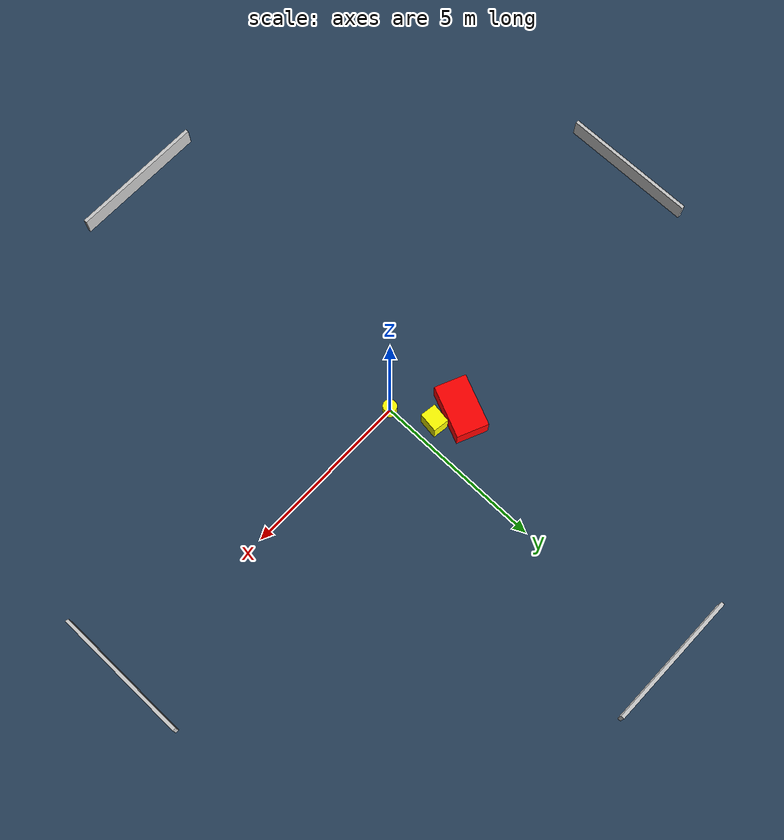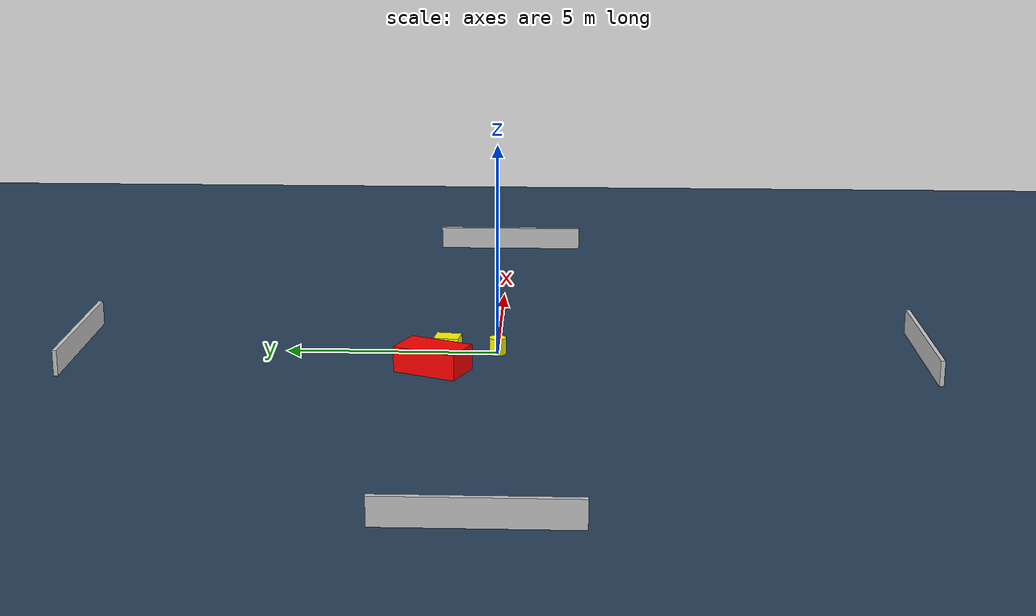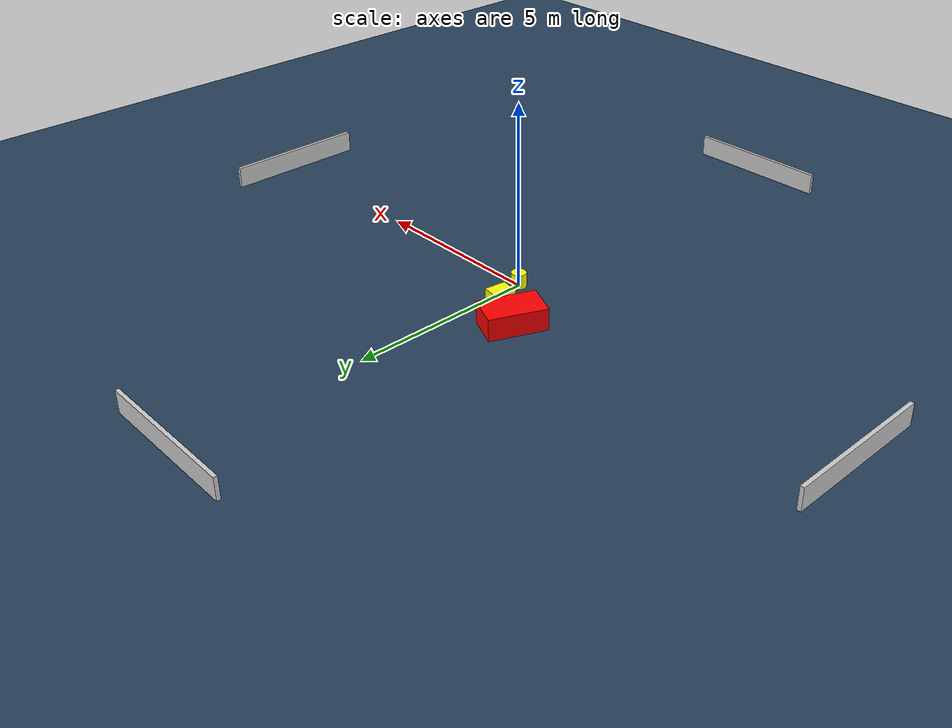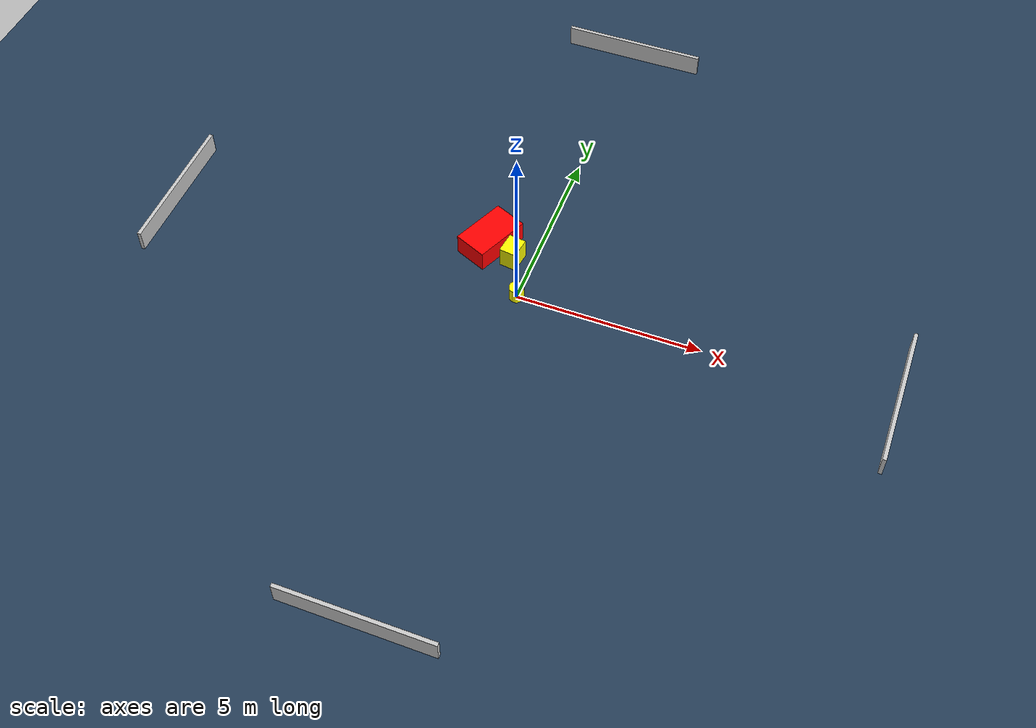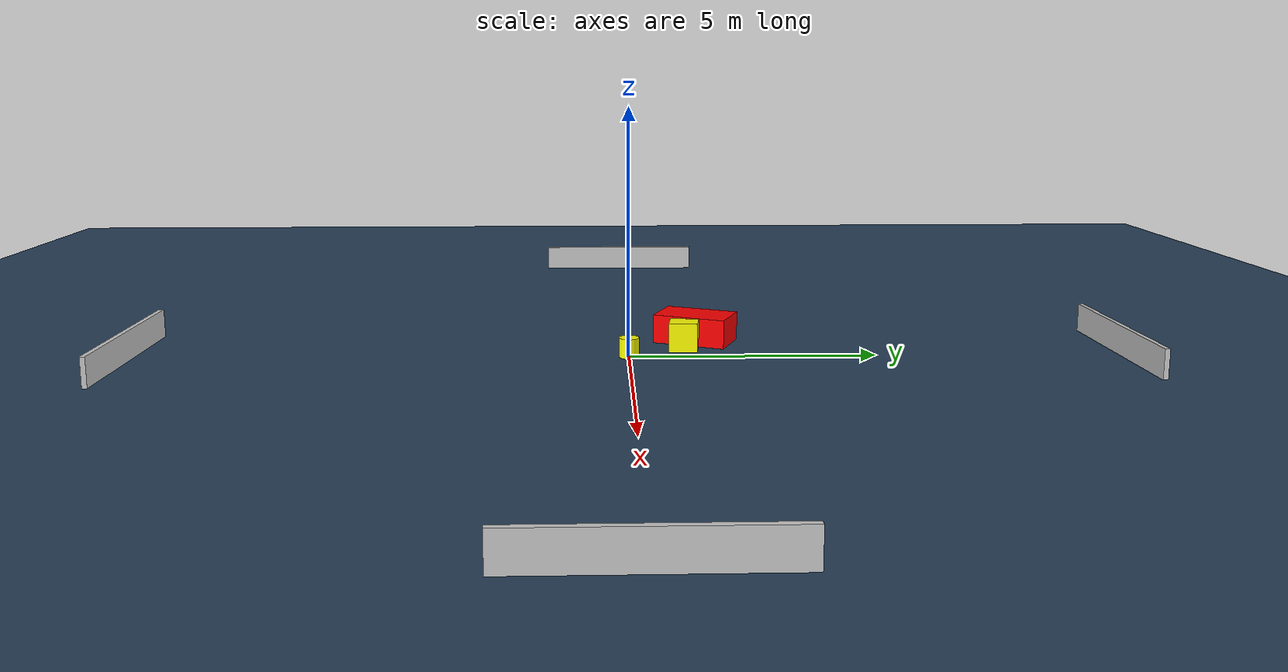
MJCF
<?xml version="1.0" ?>
<mujoco model="generated_environment">
  <option timestep="0.01" integrator="RK4" cone="elliptic"/>
  <default>
    <geom density="1"/>
  </default>
  <asset>
    <texture builtin="gradient" height="3072" name="skybox" rgb1="0.3 0.5 0.7" rgb2="0 0 0" type="skybox" width="512"/>
    <texture builtin="checker" height="300" name="groundplane" rgb1="0.2 0.3 0.4" rgb2="0.1 0.2 0.3" type="2d" width="300"/>
    <material name="groundplane" reflectance="0.2" texrepeat="5 5" texture="groundplane"/>
  </asset>
  <worldbody>
    <light dir="0 0 -1" directional="true" pos="0 0 1.5"/>
    <geom condim="3" friction="0.5 0.005 0.001" material="groundplane" name="floor" pos="0 0 0" size="0 0 0.05" type="plane"/>
    <body name="walls">
      <geom name="wall_1" condim="4" pos="-10.0 0.0 0.3" rgba="0.800000011920929 0.800000011920929 0.800000011920929 1.0" size="0.05 2.0 0.3" type="box"/>
      <geom name="wall_2" condim="4" pos="10.0 0.0 0.3" rgba="0.800000011920929 0.800000011920929 0.800000011920929 1.0" size="0.05 2.0 0.3" type="box"/>
      <geom name="wall_3" condim="4" pos="0.0 -10.0 0.3" rgba="0.800000011920929 0.800000011920929 0.800000011920929 1.0" size="2.0 0.05 0.3" type="box"/>
      <geom name="wall_4" condim="4" pos="0.0 10.0 0.3" rgba="0.800000011920929 0.800000011920929 0.800000011920929 1.0" size="2.0 0.05 0.3" type="box"/>
    </body>
    <body name="robot">
      <joint name="joint_x" type="slide" pos="0 0 0" axis="1 0 0"/>
      <joint name="joint_y" type="slide" pos="0 0 0" axis="0 1 0"/>
      <geom name="robot" type="cylinder" pos="0.0 0.0 0.2" size="0.2 0.2 0.0" mass="5.0" friction="1.0 0.005 0.0001" condim="4" rgba="1.0 1.0 0.0 1.0"/>
    </body>
    <body name="obstacle_1_movable">
      <geom name="obstacle_1_movable" condim="4" pos="-0.5460468805525629 1.1470162352382387 0.3" euler="0 0 262.09331771273446" friction="0.0 0.005 0.001" rgba="1.0 1.0 0.0 1.0" size="0.29079723959614473 0.23554024413685531 0.3" type="box" mass="0.1"/>
      <joint type="free"/>
    </body>
    <body name="obstacle_2_static">
      <geom name="obstacle_2_static" condim="4" pos="-1.2950516968804127 1.4437123650514188 0.3" euler="0 0 66.56315214023014" friction="0.0 0.005 0.001" rgba="1.0 0.0 0.0 1.0" size="0.7729036929855186 0.4692213618572079 0.3" type="box"/>
    </body>
  </worldbody>
  <actuator>
    <motor name="actuator_x" joint="joint_x" gear="1" ctrlrange="-1 1"/>
    <motor name="actuator_y" joint="joint_y" gear="1" ctrlrange="-1 1"/>
  </actuator>
</mujoco>
